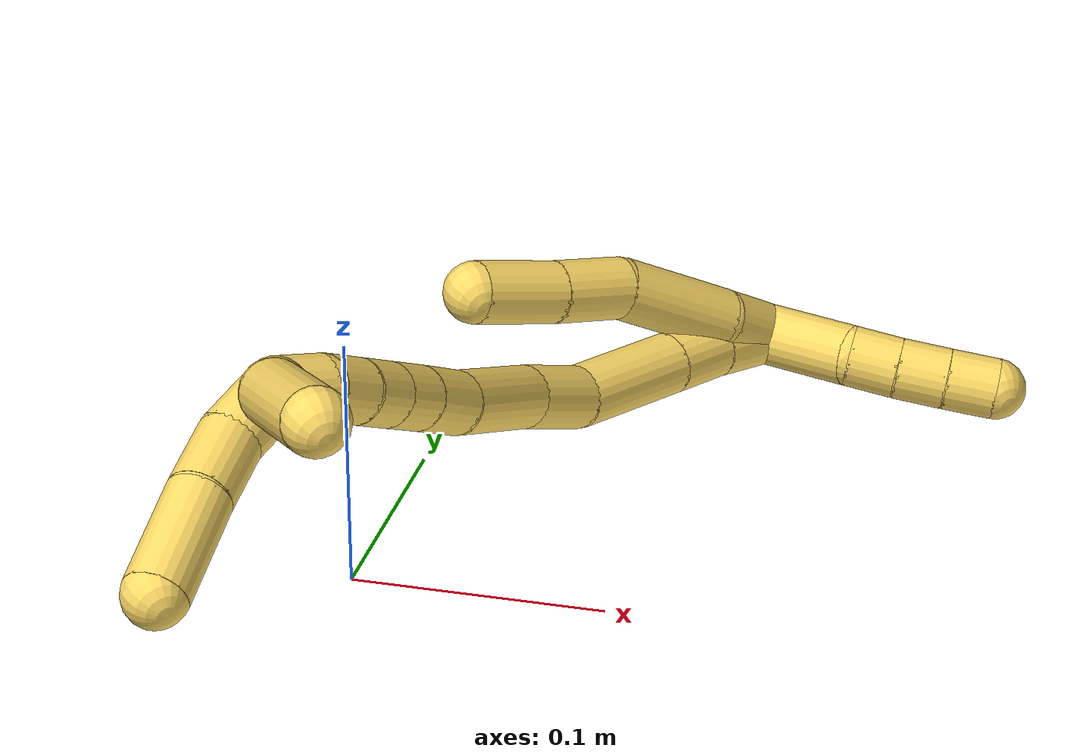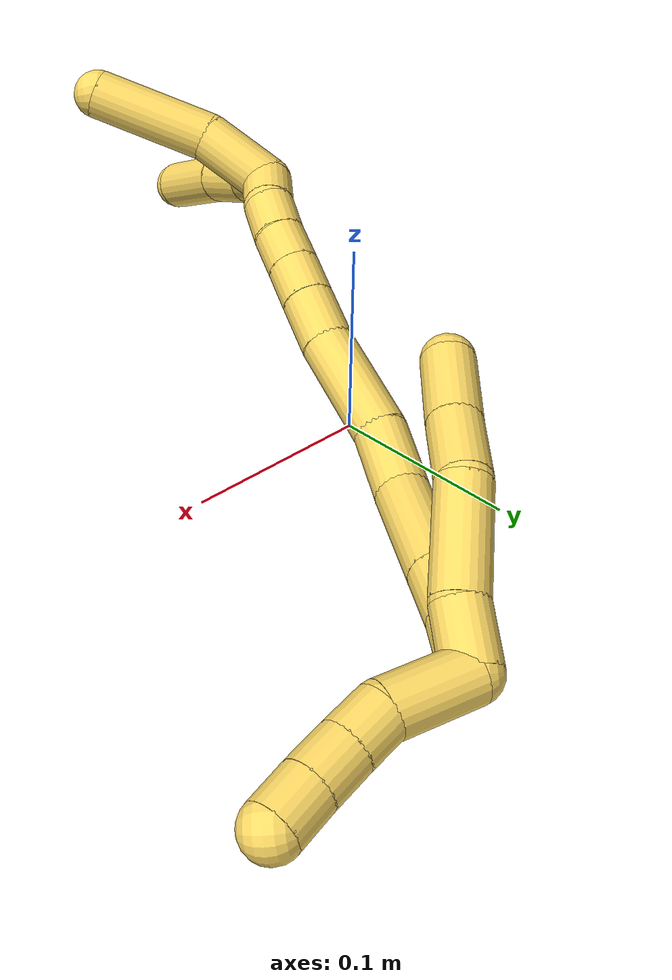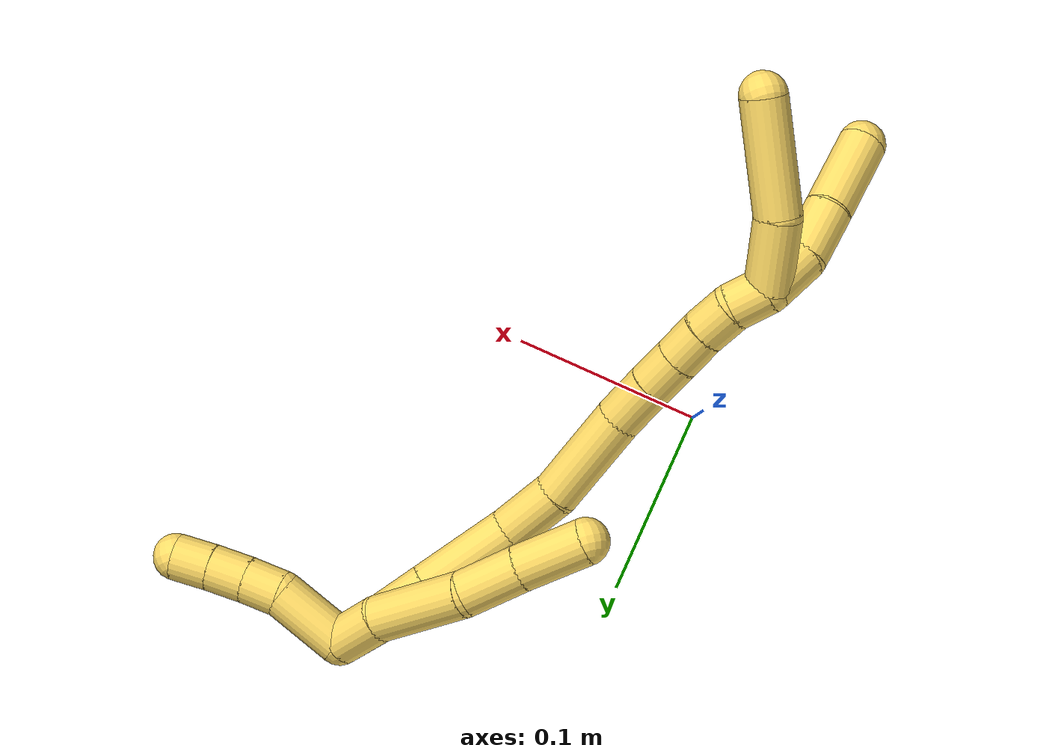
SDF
<sdf version="1.7">
 <world name="default">
  <model name="photoneo_s_sensor">
   <static>1</static>
   <pose>0 0 2 1.57079 1.57079 3.14159</pose>
   <link name="link">
    <inertial><mass>0.1</mass></inertial>
    <sensor name="sensor" type="depth">
     <update_rate>30</update_rate>
     <camera>
      <horizontal_fov>1.22</horizontal_fov>
      <image><width>1920</width><height>1200</height><format>B8G8R8</format></image>
      <clip><near>0.1</near><far>4</far></clip>
      <depth_camera><output>points</output></depth_camera>
     </camera>
     <plugin name="camera_plugin" filename="libgazebo_ros_depth_camera.so">
      <baseline>0.2</baseline>
      <alwaysOn>1</alwaysOn>
      <updateRate>0.0</updateRate>
      <cameraName>camera_ir</cameraName>
      <imageTopicName>/camera/color/image_raw</imageTopicName>
      <cameraInfoTopicName>/camera/color/camera_info</cameraInfoTopicName>
      <depthImageTopicName>/camera/depth/image_raw</depthImageTopicName>
      <depthImageCameraInfoTopicName>/camera/depth/camera_info</depthImageCameraInfoTopicName>
      <pointCloudTopicName>/camera/depth/points</pointCloudTopicName>
      <frameName>fr_optical</frameName>
      <pointCloudCutoff>0.1</pointCloudCutoff>
      <pointCloudCutoffMax>2.0</pointCloudCutoffMax>
      <distortionK1>0</distortionK1>
      <distortionK2>0</distortionK2>
      <distortionK3>0</distortionK3>
      <distortionT1>0</distortionT1>
      <distortionT2>0</distortionT2>
      <CxPrime>0</CxPrime>
      <Cx>0</Cx>
      <Cy>0</Cy>
      <focalLength>0</focalLength>
      <hackBaseline>0</hackBaseline>
     </plugin>
    </sensor>
   </link>
  </model>
  <model name="bin">
   <static>1</static>
   <link name="bottom">
    <collision name="collision-bottom">
     <pose>0 0 -0.01 0 -0 0</pose>
     <geometry><box><size>0.8 0.6 0.02</size></box></geometry>
     <surface>
      <friction><ode><mu>100</mu><mu2>100</mu2></ode></friction>
      <contact><collide_bitmask>65535</collide_bitmask></contact>
     </surface>
    </collision>
   </link>
   <link name="west_wall">
    <collision name="collision-west_wall">
     <pose>-0.41 0 0.1 0 -0 0</pose>
     <geometry><box><size>0.02 0.6 0.2</size></box></geometry>
     <surface>
      <friction><ode><mu>100</mu><mu2>100</mu2></ode></friction>
      <contact><collide_bitmask>65535</collide_bitmask></contact>
     </surface>
    </collision>
   </link>
   <link name="east_wall">
    <collision name="collision-east_wall">
     <pose>0.41 0 0.1 0 -0 0</pose>
     <geometry><box><size>0.02 0.6 0.2</size></box></geometry>
     <surface>
      <friction><ode><mu>100</mu><mu2>100</mu2></ode></friction>
      <contact><collide_bitmask>65535</collide_bitmask></contact>
     </surface>
    </collision>
   </link>
   <link name="south_wall">
    <collision name="collision-south_wall">
     <pose>0 -0.31 0.1 0 -0 0</pose>
     <geometry><box><size>0.8 0.02 0.2</size></box></geometry>
     <surface>
      <friction><ode><mu>100</mu><mu2>100</mu2></ode></friction>
      <contact><collide_bitmask>65535</collide_bitmask></contact>
     </surface>
    </collision>
   </link>
   <link name="north_wall">
    <collision name="collision-north_wall">
     <pose>0 0.31 0.1 0 -0 0</pose>
     <geometry><box><size>0.8 0.02 0.2</size></box></geometry>
     <surface>
      <friction><ode><mu>100</mu><mu2>100</mu2></ode></friction>
      <contact><collide_bitmask>65535</collide_bitmask></contact>
     </surface>
    </collision>
   </link>
  </model>
  <model name="5">
   <static>0</static>
   <link name="5">
    <collision name="collision-cylinder-e_1_2_8">
     <pose>-0.00446 -0.013111 -0.001618 1.69357 -0.325618 -0.367368</pose>
     <geometry><cylinder><radius>0.0125</radius><length>0.027886</length></cylinder></geometry>
     <surface>
      <friction><ode><mu>1.16</mu><mu2>1.16</mu2><slip1>0</slip1><slip2>0</slip2></ode></friction>
      <contact><ode><kp>1e+06</kp><kd>1</kd><max_vel>0</max_vel><min_depth>0.001</min_depth></ode></contact>
     </surface>
    </collision>
    <visual name="visual-cylinder-e_1_2_8">
     <pose>-0.00446 -0.013111 -0.001618 1.69357 -0.325618 -0.367368</pose>
     <geometry><cylinder><radius>0.0125</radius><length>0.027886</length></cylinder></geometry>
     <material><ambient>1 0.858824 0.4 1</ambient></material>
    </visual>
    <collision name="collision-cylinder-e_2_8_9">
     <pose>-0.01985 -0.049872 -0.001154 1.48301 -0.431441 -0.39612</pose>
     <geometry><cylinder><radius>0.0125</radius><length>0.052274</length></cylinder></geometry>
     <surface>
      <friction><ode><mu>1.16</mu><mu2>1.16</mu2><slip1>0</slip1><slip2>0</slip2></ode></friction>
      <contact><ode><kp>1e+06</kp><kd>1</kd><max_vel>0</max_vel><min_depth>0.001</min_depth></ode></contact>
     </surface>
    </collision>
    <visual name="visual-cylinder-e_2_8_9">
     <pose>-0.01985 -0.049872 -0.001154 1.48301 -0.431441 -0.39612</pose>
     <geometry><cylinder><radius>0.0125</radius><length>0.052274</length></cylinder></geometry>
     <material><ambient>1 0.858824 0.4 1</ambient></material>
    </visual>
    <collision name="collision-cylinder-e_3_9_10">
     <pose>-0.040745 -0.086258 -0.000809 1.70633 -0.659447 -0.747271</pose>
     <geometry><cylinder><radius>0.0125</radius><length>0.032526</length></cylinder></geometry>
     <surface>
      <friction><ode><mu>1.16</mu><mu2>1.16</mu2><slip1>0</slip1><slip2>0</slip2></ode></friction>
      <contact><ode><kp>1e+06</kp><kd>1</kd><max_vel>0</max_vel><min_depth>0.001</min_depth></ode></contact>
     </surface>
    </collision>
    <visual name="visual-cylinder-e_3_9_10">
     <pose>-0.040745 -0.086258 -0.000809 1.70633 -0.659447 -0.747271</pose>
     <geometry><cylinder><radius>0.0125</radius><length>0.032526</length></cylinder></geometry>
     <material><ambient>1 0.858824 0.4 1</ambient></material>
    </visual>
    <collision name="collision-cylinder-e_4_10_6">
     <pose>-0.061729 -0.114001 -0.003735 1.64988 -0.631924 -0.680195</pose>
     <geometry><cylinder><radius>0.0125</radius><length>0.037314</length></cylinder></geometry>
     <surface>
      <friction><ode><mu>1.16</mu><mu2>1.16</mu2><slip1>0</slip1><slip2>0</slip2></ode></friction>
      <contact><ode><kp>1e+06</kp><kd>1</kd><max_vel>0</max_vel><min_depth>0.001</min_depth></ode></contact>
     </surface>
    </collision>
    <visual name="visual-cylinder-e_4_10_6">
     <pose>-0.061729 -0.114001 -0.003735 1.64988 -0.631924 -0.680195</pose>
     <geometry><cylinder><radius>0.0125</radius><length>0.037314</length></cylinder></geometry>
     <material><ambient>1 0.858824 0.4 1</ambient></material>
    </visual>
    <collision name="collision-cylinder-e_1_2_11">
     <pose>0.010831 0.004786 -0.015726 -2.84616 0.582596 -2.22026</pose>
     <geometry><cylinder><radius>0.0125</radius><length>0.039371</length></cylinder></geometry>
     <surface>
      <friction><ode><mu>1.16</mu><mu2>1.16</mu2><slip1>0</slip1><slip2>0</slip2></ode></friction>
      <contact><ode><kp>1e+06</kp><kd>1</kd><max_vel>0</max_vel><min_depth>0.001</min_depth></ode></contact>
     </surface>
    </collision>
    <visual name="visual-cylinder-e_1_2_11">
     <pose>0.010831 0.004786 -0.015726 -2.84616 0.582596 -2.22026</pose>
     <geometry><cylinder><radius>0.0125</radius><length>0.039371</length></cylinder></geometry>
     <material><ambient>1 0.858824 0.4 1</ambient></material>
    </visual>
    <collision name="collision-cylinder-e_2_11_12">
     <pose>0.027495 0.014893 -0.037615 -2.42931 0.621652 -1.4246</pose>
     <geometry><cylinder><radius>0.0125</radius><length>0.020032</length></cylinder></geometry>
     <surface>
      <friction><ode><mu>1.16</mu><mu2>1.16</mu2><slip1>0</slip1><slip2>0</slip2></ode></friction>
      <contact><ode><kp>1e+06</kp><kd>1</kd><max_vel>0</max_vel><min_depth>0.001</min_depth></ode></contact>
     </surface>
    </collision>
    <visual name="visual-cylinder-e_2_11_12">
     <pose>0.027495 0.014893 -0.037615 -2.42931 0.621652 -1.4246</pose>
     <geometry><cylinder><radius>0.0125</radius><length>0.020032</length></cylinder></geometry>
     <material><ambient>1 0.858824 0.4 1</ambient></material>
    </visual>
    <collision name="collision-cylinder-e_3_12_13">
     <pose>0.039561 0.025659 -0.049624 -2.39178 0.662524 -1.43653</pose>
     <geometry><cylinder><radius>0.0125</radius><length>0.020265</length></cylinder></geometry>
     <surface>
      <friction><ode><mu>1.16</mu><mu2>1.16</mu2><slip1>0</slip1><slip2>0</slip2></ode></friction>
      <contact><ode><kp>1e+06</kp><kd>1</kd><max_vel>0</max_vel><min_depth>0.001</min_depth></ode></contact>
     </surface>
    </collision>
    <visual name="visual-cylinder-e_3_12_13">
     <pose>0.039561 0.025659 -0.049624 -2.39178 0.662524 -1.43653</pose>
     <geometry><cylinder><radius>0.0125</radius><length>0.020265</length></cylinder></geometry>
     <material><ambient>1 0.858824 0.4 1</ambient></material>
    </visual>
    <collision name="collision-cylinder-e_4_13_5">
     <pose>0.05215 0.036776 -0.061017 -2.34502 0.675488 -1.39103</pose>
     <geometry><cylinder><radius>0.0125</radius><length>0.020331</length></cylinder></geometry>
     <surface>
      <friction><ode><mu>1.16</mu><mu2>1.16</mu2><slip1>0</slip1><slip2>0</slip2></ode></friction>
      <contact><ode><kp>1e+06</kp><kd>1</kd><max_vel>0</max_vel><min_depth>0.001</min_depth></ode></contact>
     </surface>
    </collision>
    <visual name="visual-cylinder-e_4_13_5">
     <pose>0.05215 0.036776 -0.061017 -2.34502 0.675488 -1.39103</pose>
     <geometry><cylinder><radius>0.0125</radius><length>0.020331</length></cylinder></geometry>
     <material><ambient>1 0.858824 0.4 1</ambient></material>
    </visual>
    <collision name="collision-cylinder-e_1_2_14">
     <pose>-0.009314 -0.009873 -0.003114 1.87636 -0.732667 -0.964239</pose>
     <geometry><cylinder><radius>0.0125</radius><length>0.027852</length></cylinder></geometry>
     <surface>
      <friction><ode><mu>1.16</mu><mu2>1.16</mu2><slip1>0</slip1><slip2>0</slip2></ode></friction>
      <contact><ode><kp>1e+06</kp><kd>1</kd><max_vel>0</max_vel><min_depth>0.001</min_depth></ode></contact>
     </surface>
    </collision>
    <visual name="visual-cylinder-e_1_2_14">
     <pose>-0.009314 -0.009873 -0.003114 1.87636 -0.732667 -0.964239</pose>
     <geometry><cylinder><radius>0.0125</radius><length>0.027852</length></cylinder></geometry>
     <material><ambient>1 0.858824 0.4 1</ambient></material>
    </visual>
    <collision name="collision-cylinder-e_2_14_15">
     <pose>-0.027362 -0.028791 -0.010291 1.9929 -0.7221 -1.05642</pose>
     <geometry><cylinder><radius>0.0125</radius><length>0.026427</length></cylinder></geometry>
     <surface>
      <friction><ode><mu>1.16</mu><mu2>1.16</mu2><slip1>0</slip1><slip2>0</slip2></ode></friction>
      <contact><ode><kp>1e+06</kp><kd>1</kd><max_vel>0</max_vel><min_depth>0.001</min_depth></ode></contact>
     </surface>
    </collision>
    <visual name="visual-cylinder-e_2_14_15">
     <pose>-0.027362 -0.028791 -0.010291 1.9929 -0.7221 -1.05642</pose>
     <geometry><cylinder><radius>0.0125</radius><length>0.026427</length></cylinder></geometry>
     <material><ambient>1 0.858824 0.4 1</ambient></material>
    </visual>
    <collision name="collision-cylinder-e_3_15_16">
     <pose>-0.053096 -0.055514 -0.022258 1.99128 -0.720463 -1.05272</pose>
     <geometry><cylinder><radius>0.0125</radius><length>0.051536</length></cylinder></geometry>
     <surface>
      <friction><ode><mu>1.16</mu><mu2>1.16</mu2><slip1>0</slip1><slip2>0</slip2></ode></friction>
      <contact><ode><kp>1e+06</kp><kd>1</kd><max_vel>0</max_vel><min_depth>0.001</min_depth></ode></contact>
     </surface>
    </collision>
    <visual name="visual-cylinder-e_3_15_16">
     <pose>-0.053096 -0.055514 -0.022258 1.99128 -0.720463 -1.05272</pose>
     <geometry><cylinder><radius>0.0125</radius><length>0.051536</length></cylinder></geometry>
     <material><ambient>1 0.858824 0.4 1</ambient></material>
    </visual>
    <collision name="collision-cylinder-e_4_16_17">
     <pose>-0.076996 -0.087808 -0.034815 1.87897 -0.422746 -0.570947</pose>
     <geometry><cylinder><radius>0.0125</radius><length>0.03364</length></cylinder></geometry>
     <surface>
      <friction><ode><mu>1.16</mu><mu2>1.16</mu2><slip1>0</slip1><slip2>0</slip2></ode></friction>
      <contact><ode><kp>1e+06</kp><kd>1</kd><max_vel>0</max_vel><min_depth>0.001</min_depth></ode></contact>
     </surface>
    </collision>
    <visual name="visual-cylinder-e_4_16_17">
     <pose>-0.076996 -0.087808 -0.034815 1.87897 -0.422746 -0.570947</pose>
     <geometry><cylinder><radius>0.0125</radius><length>0.03364</length></cylinder></geometry>
     <material><ambient>1 0.858824 0.4 1</ambient></material>
    </visual>
    <collision name="collision-cylinder-e_5_17_18">
     <pose>-0.09217 -0.124972 -0.05125 2.05233 -0.314408 -0.511887</pose>
     <geometry><cylinder><radius>0.0125</radius><length>0.053503</length></cylinder></geometry>
     <surface>
      <friction><ode><mu>1.16</mu><mu2>1.16</mu2><slip1>0</slip1><slip2>0</slip2></ode></friction>
      <contact><ode><kp>1e+06</kp><kd>1</kd><max_vel>0</max_vel><min_depth>0.001</min_depth></ode></contact>
     </surface>
    </collision>
    <visual name="visual-cylinder-e_5_17_18">
     <pose>-0.09217 -0.124972 -0.05125 2.05233 -0.314408 -0.511887</pose>
     <geometry><cylinder><radius>0.0125</radius><length>0.053503</length></cylinder></geometry>
     <material><ambient>1 0.858824 0.4 1</ambient></material>
    </visual>
    <collision name="collision-cylinder-e_6_18_19">
     <pose>-0.103931 -0.159322 -0.067542 1.93573 -0.269324 -0.388619</pose>
     <geometry><cylinder><radius>0.0125</radius><length>0.026214</length></cylinder></geometry>
     <surface>
      <friction><ode><mu>1.16</mu><mu2>1.16</mu2><slip1>0</slip1><slip2>0</slip2></ode></friction>
      <contact><ode><kp>1e+06</kp><kd>1</kd><max_vel>0</max_vel><min_depth>0.001</min_depth></ode></contact>
     </surface>
    </collision>
    <visual name="visual-cylinder-e_6_18_19">
     <pose>-0.103931 -0.159322 -0.067542 1.93573 -0.269324 -0.388619</pose>
     <geometry><cylinder><radius>0.0125</radius><length>0.026214</length></cylinder></geometry>
     <material><ambient>1 0.858824 0.4 1</ambient></material>
    </visual>
    <collision name="collision-cylinder-e_7_19_20">
     <pose>-0.110364 -0.180365 -0.075517 1.92961 -0.290044 -0.415431</pose>
     <geometry><cylinder><radius>0.0125</radius><length>0.020599</length></cylinder></geometry>
     <surface>
      <friction><ode><mu>1.16</mu><mu2>1.16</mu2><slip1>0</slip1><slip2>0</slip2></ode></friction>
      <contact><ode><kp>1e+06</kp><kd>1</kd><max_vel>0</max_vel><min_depth>0.001</min_depth></ode></contact>
     </surface>
    </collision>
    <visual name="visual-cylinder-e_7_19_20">
     <pose>-0.110364 -0.180365 -0.075517 1.92961 -0.290044 -0.415431</pose>
     <geometry><cylinder><radius>0.0125</radius><length>0.020599</length></cylinder></geometry>
     <material><ambient>1 0.858824 0.4 1</ambient></material>
    </visual>
    <collision name="collision-cylinder-e_8_20_21">
     <pose>-0.116102 -0.198624 -0.082458 1.9387 -0.281326 -0.406953</pose>
     <geometry><cylinder><radius>0.0125</radius><length>0.020122</length></cylinder></geometry>
     <surface>
      <friction><ode><mu>1.16</mu><mu2>1.16</mu2><slip1>0</slip1><slip2>0</slip2></ode></friction>
      <contact><ode><kp>1e+06</kp><kd>1</kd><max_vel>0</max_vel><min_depth>0.001</min_depth></ode></contact>
     </surface>
    </collision>
    <visual name="visual-cylinder-e_8_20_21">
     <pose>-0.116102 -0.198624 -0.082458 1.9387 -0.281326 -0.406953</pose>
     <geometry><cylinder><radius>0.0125</radius><length>0.020122</length></cylinder></geometry>
     <material><ambient>1 0.858824 0.4 1</ambient></material>
    </visual>
    <collision name="collision-cylinder-e_9_21_22">
     <pose>-0.122233 -0.216687 -0.088682 1.86573 -0.339457 -0.454365</pose>
     <geometry><cylinder><radius>0.0125</radius><length>0.020047</length></cylinder></geometry>
     <surface>
      <friction><ode><mu>1.16</mu><mu2>1.16</mu2><slip1>0</slip1><slip2>0</slip2></ode></friction>
      <contact><ode><kp>1e+06</kp><kd>1</kd><max_vel>0</max_vel><min_depth>0.001</min_depth></ode></contact>
     </surface>
    </collision>
    <visual name="visual-cylinder-e_9_21_22">
     <pose>-0.122233 -0.216687 -0.088682 1.86573 -0.339457 -0.454365</pose>
     <geometry><cylinder><radius>0.0125</radius><length>0.020047</length></cylinder></geometry>
     <material><ambient>1 0.858824 0.4 1</ambient></material>
    </visual>
    <collision name="collision-cylinder-e_10_22_1">
     <pose>-0.131455 -0.233748 -0.092735 1.73222 -0.626852 -0.728315</pose>
     <geometry><cylinder><radius>0.0125</radius><length>0.020061</length></cylinder></geometry>
     <surface>
      <friction><ode><mu>1.16</mu><mu2>1.16</mu2><slip1>0</slip1><slip2>0</slip2></ode></friction>
      <contact><ode><kp>1e+06</kp><kd>1</kd><max_vel>0</max_vel><min_depth>0.001</min_depth></ode></contact>
     </surface>
    </collision>
    <visual name="visual-cylinder-e_10_22_1">
     <pose>-0.131455 -0.233748 -0.092735 1.73222 -0.626852 -0.728315</pose>
     <geometry><cylinder><radius>0.0125</radius><length>0.020061</length></cylinder></geometry>
     <material><ambient>1 0.858824 0.4 1</ambient></material>
    </visual>
    <collision name="collision-cylinder-e_1_1_23">
     <pose>-0.148037 -0.246066 -0.100585 2.56026 -0.938981 -2.07607</pose>
     <geometry><cylinder><radius>0.0125</radius><length>0.026516</length></cylinder></geometry>
     <surface>
      <friction><ode><mu>1.16</mu><mu2>1.16</mu2><slip1>0</slip1><slip2>0</slip2></ode></friction>
      <contact><ode><kp>1e+06</kp><kd>1</kd><max_vel>0</max_vel><min_depth>0.001</min_depth></ode></contact>
     </surface>
    </collision>
    <visual name="visual-cylinder-e_1_1_23">
     <pose>-0.148037 -0.246066 -0.100585 2.56026 -0.938981 -2.07607</pose>
     <geometry><cylinder><radius>0.0125</radius><length>0.026516</length></cylinder></geometry>
     <material><ambient>1 0.858824 0.4 1</ambient></material>
    </visual>
    <collision name="collision-cylinder-e_2_23_24">
     <pose>-0.167729 -0.254784 -0.117958 2.75421 -0.655475 -2.09505</pose>
     <geometry><cylinder><radius>0.0125</radius><length>0.029507</length></cylinder></geometry>
     <surface>
      <friction><ode><mu>1.16</mu><mu2>1.16</mu2><slip1>0</slip1><slip2>0</slip2></ode></friction>
      <contact><ode><kp>1e+06</kp><kd>1</kd><max_vel>0</max_vel><min_depth>0.001</min_depth></ode></contact>
     </surface>
    </collision>
    <visual name="visual-cylinder-e_2_23_24">
     <pose>-0.167729 -0.254784 -0.117958 2.75421 -0.655475 -2.09505</pose>
     <geometry><cylinder><radius>0.0125</radius><length>0.029507</length></cylinder></geometry>
     <material><ambient>1 0.858824 0.4 1</ambient></material>
    </visual>
    <collision name="collision-cylinder-e_3_24_4">
     <pose>-0.191073 -0.263523 -0.144876 2.87921 -0.711126 -2.45876</pose>
     <geometry><cylinder><radius>0.0125</radius><length>0.043977</length></cylinder></geometry>
     <surface>
      <friction><ode><mu>1.16</mu><mu2>1.16</mu2><slip1>0</slip1><slip2>0</slip2></ode></friction>
      <contact><ode><kp>1e+06</kp><kd>1</kd><max_vel>0</max_vel><min_depth>0.001</min_depth></ode></contact>
     </surface>
    </collision>
    <visual name="visual-cylinder-e_3_24_4">
     <pose>-0.191073 -0.263523 -0.144876 2.87921 -0.711126 -2.45876</pose>
     <geometry><cylinder><radius>0.0125</radius><length>0.043977</length></cylinder></geometry>
     <material><ambient>1 0.858824 0.4 1</ambient></material>
    </visual>
    <collision name="collision-cylinder-e_1_1_25">
     <pose>-0.135208 -0.254908 -0.108054 2.38827 0.110424 0.277653</pose>
     <geometry><cylinder><radius>0.0125</radius><length>0.03866</length></cylinder></geometry>
     <surface>
      <friction><ode><mu>1.16</mu><mu2>1.16</mu2><slip1>0</slip1><slip2>0</slip2></ode></friction>
      <contact><ode><kp>1e+06</kp><kd>1</kd><max_vel>0</max_vel><min_depth>0.001</min_depth></ode></contact>
     </surface>
    </collision>
    <visual name="visual-cylinder-e_1_1_25">
     <pose>-0.135208 -0.254908 -0.108054 2.38827 0.110424 0.277653</pose>
     <geometry><cylinder><radius>0.0125</radius><length>0.03866</length></cylinder></geometry>
     <material><ambient>1 0.858824 0.4 1</ambient></material>
    </visual>
    <collision name="collision-cylinder-e_2_25_3">
     <pose>-0.126742 -0.281978 -0.148649 2.65896 0.208095 0.802551</pose>
     <geometry><cylinder><radius>0.0125</radius><length>0.06134</length></cylinder></geometry>
     <surface>
      <friction><ode><mu>1.16</mu><mu2>1.16</mu2><slip1>0</slip1><slip2>0</slip2></ode></friction>
      <contact><ode><kp>1e+06</kp><kd>1</kd><max_vel>0</max_vel><min_depth>0.001</min_depth></ode></contact>
     </surface>
    </collision>
    <visual name="visual-cylinder-e_2_25_3">
     <pose>-0.126742 -0.281978 -0.148649 2.65896 0.208095 0.802551</pose>
     <geometry><cylinder><radius>0.0125</radius><length>0.06134</length></cylinder></geometry>
     <material><ambient>1 0.858824 0.4 1</ambient></material>
    </visual>
    <collision name="collision-sphere-3">
     <pose>-0.120406 -0.295905 -0.17523 0 -0 0</pose>
     <geometry><sphere><radius>0.0125</radius></sphere></geometry>
     <surface>
      <friction><ode><mu>1.16</mu><mu2>1.16</mu2><slip1>0</slip1><slip2>0</slip2></ode></friction>
      <contact><ode><kp>1e+06</kp><kd>1</kd><max_vel>0</max_vel><min_depth>0.001</min_depth></ode></contact>
     </surface>
    </collision>
    <visual name="visual-sphere-3">
     <pose>-0.120406 -0.295905 -0.17523 0 -0 0</pose>
     <geometry><sphere><radius>0.0125</radius></sphere></geometry>
     <material><ambient>1 0.858824 0.4 1</ambient></material>
    </visual>
    <collision name="collision-sphere-25">
     <pose>-0.133078 -0.268051 -0.122068 0 -0 0</pose>
     <geometry><sphere><radius>0.0125</radius></sphere></geometry>
     <surface>
      <friction><ode><mu>1.16</mu><mu2>1.16</mu2><slip1>0</slip1><slip2>0</slip2></ode></friction>
      <contact><ode><kp>1e+06</kp><kd>1</kd><max_vel>0</max_vel><min_depth>0.001</min_depth></ode></contact>
     </surface>
    </collision>
    <visual name="visual-sphere-25">
     <pose>-0.133078 -0.268051 -0.122068 0 -0 0</pose>
     <geometry><sphere><radius>0.0125</radius></sphere></geometry>
     <material><ambient>1 0.858824 0.4 1</ambient></material>
    </visual>
    <collision name="collision-sphere-4">
     <pose>-0.205425 -0.267844 -0.160965 0 -0 0</pose>
     <geometry><sphere><radius>0.0125</radius></sphere></geometry>
     <surface>
      <friction><ode><mu>1.16</mu><mu2>1.16</mu2><slip1>0</slip1><slip2>0</slip2></ode></friction>
      <contact><ode><kp>1e+06</kp><kd>1</kd><max_vel>0</max_vel><min_depth>0.001</min_depth></ode></contact>
     </surface>
    </collision>
    <visual name="visual-sphere-4">
     <pose>-0.205425 -0.267844 -0.160965 0 -0 0</pose>
     <geometry><sphere><radius>0.0125</radius></sphere></geometry>
     <material><ambient>1 0.858824 0.4 1</ambient></material>
    </visual>
    <collision name="collision-sphere-24">
     <pose>-0.176721 -0.259202 -0.128787 0 -0 0</pose>
     <geometry><sphere><radius>0.0125</radius></sphere></geometry>
     <surface>
      <friction><ode><mu>1.16</mu><mu2>1.16</mu2><slip1>0</slip1><slip2>0</slip2></ode></friction>
      <contact><ode><kp>1e+06</kp><kd>1</kd><max_vel>0</max_vel><min_depth>0.001</min_depth></ode></contact>
     </surface>
    </collision>
    <visual name="visual-sphere-24">
     <pose>-0.176721 -0.259202 -0.128787 0 -0 0</pose>
     <geometry><sphere><radius>0.0125</radius></sphere></geometry>
     <material><ambient>1 0.858824 0.4 1</ambient></material>
    </visual>
    <collision name="collision-sphere-23">
     <pose>-0.158736 -0.250366 -0.107129 0 -0 0</pose>
     <geometry><sphere><radius>0.0125</radius></sphere></geometry>
     <surface>
      <friction><ode><mu>1.16</mu><mu2>1.16</mu2><slip1>0</slip1><slip2>0</slip2></ode></friction>
      <contact><ode><kp>1e+06</kp><kd>1</kd><max_vel>0</max_vel><min_depth>0.001</min_depth></ode></contact>
     </surface>
    </collision>
    <visual name="visual-sphere-23">
     <pose>-0.158736 -0.250366 -0.107129 0 -0 0</pose>
     <geometry><sphere><radius>0.0125</radius></sphere></geometry>
     <material><ambient>1 0.858824 0.4 1</ambient></material>
    </visual>
    <collision name="collision-sphere-1">
     <pose>-0.137338 -0.241766 -0.094041 0 -0 0</pose>
     <geometry><sphere><radius>0.0125</radius></sphere></geometry>
     <surface>
      <friction><ode><mu>1.16</mu><mu2>1.16</mu2><slip1>0</slip1><slip2>0</slip2></ode></friction>
      <contact><ode><kp>1e+06</kp><kd>1</kd><max_vel>0</max_vel><min_depth>0.001</min_depth></ode></contact>
     </surface>
    </collision>
    <visual name="visual-sphere-1">
     <pose>-0.137338 -0.241766 -0.094041 0 -0 0</pose>
     <geometry><sphere><radius>0.0125</radius></sphere></geometry>
     <material><ambient>1 0.858824 0.4 1</ambient></material>
    </visual>
    <collision name="collision-sphere-22">
     <pose>-0.125571 -0.22573 -0.091429 0 -0 0</pose>
     <geometry><sphere><radius>0.0125</radius></sphere></geometry>
     <surface>
      <friction><ode><mu>1.16</mu><mu2>1.16</mu2><slip1>0</slip1><slip2>0</slip2></ode></friction>
      <contact><ode><kp>1e+06</kp><kd>1</kd><max_vel>0</max_vel><min_depth>0.001</min_depth></ode></contact>
     </surface>
    </collision>
    <visual name="visual-sphere-22">
     <pose>-0.125571 -0.22573 -0.091429 0 -0 0</pose>
     <geometry><sphere><radius>0.0125</radius></sphere></geometry>
     <material><ambient>1 0.858824 0.4 1</ambient></material>
    </visual>
    <collision name="collision-sphere-21">
     <pose>-0.118896 -0.207643 -0.085935 0 -0 0</pose>
     <geometry><sphere><radius>0.0125</radius></sphere></geometry>
     <surface>
      <friction><ode><mu>1.16</mu><mu2>1.16</mu2><slip1>0</slip1><slip2>0</slip2></ode></friction>
      <contact><ode><kp>1e+06</kp><kd>1</kd><max_vel>0</max_vel><min_depth>0.001</min_depth></ode></contact>
     </surface>
    </collision>
    <visual name="visual-sphere-21">
     <pose>-0.118896 -0.207643 -0.085935 0 -0 0</pose>
     <geometry><sphere><radius>0.0125</radius></sphere></geometry>
     <material><ambient>1 0.858824 0.4 1</ambient></material>
    </visual>
    <collision name="collision-sphere-11">
     <pose>0.021662 0.009572 -0.031452 0 -0 0</pose>
     <geometry><sphere><radius>0.0125</radius></sphere></geometry>
     <surface>
      <friction><ode><mu>1.16</mu><mu2>1.16</mu2><slip1>0</slip1><slip2>0</slip2></ode></friction>
      <contact><ode><kp>1e+06</kp><kd>1</kd><max_vel>0</max_vel><min_depth>0.001</min_depth></ode></contact>
     </surface>
    </collision>
    <visual name="visual-sphere-11">
     <pose>0.021662 0.009572 -0.031452 0 -0 0</pose>
     <geometry><sphere><radius>0.0125</radius></sphere></geometry>
     <material><ambient>1 0.858824 0.4 1</ambient></material>
    </visual>
    <collision name="collision-sphere-6">
     <pose>-0.07275 -0.129008 -0.004925 0 -0 0</pose>
     <geometry><sphere><radius>0.0125</radius></sphere></geometry>
     <surface>
      <friction><ode><mu>1.16</mu><mu2>1.16</mu2><slip1>0</slip1><slip2>0</slip2></ode></friction>
      <contact><ode><kp>1e+06</kp><kd>1</kd><max_vel>0</max_vel><min_depth>0.001</min_depth></ode></contact>
     </surface>
    </collision>
    <visual name="visual-sphere-6">
     <pose>-0.07275 -0.129008 -0.004925 0 -0 0</pose>
     <geometry><sphere><radius>0.0125</radius></sphere></geometry>
     <material><ambient>1 0.858824 0.4 1</ambient></material>
    </visual>
    <collision name="collision-sphere-10">
     <pose>-0.050709 -0.098993 -0.002546 0 -0 0</pose>
     <geometry><sphere><radius>0.0125</radius></sphere></geometry>
     <surface>
      <friction><ode><mu>1.16</mu><mu2>1.16</mu2><slip1>0</slip1><slip2>0</slip2></ode></friction>
      <contact><ode><kp>1e+06</kp><kd>1</kd><max_vel>0</max_vel><min_depth>0.001</min_depth></ode></contact>
     </surface>
    </collision>
    <visual name="visual-sphere-10">
     <pose>-0.050709 -0.098993 -0.002546 0 -0 0</pose>
     <geometry><sphere><radius>0.0125</radius></sphere></geometry>
     <material><ambient>1 0.858824 0.4 1</ambient></material>
    </visual>
    <collision name="collision-sphere-9">
     <pose>-0.03078 -0.073523 0.000927 0 -0 0</pose>
     <geometry><sphere><radius>0.0125</radius></sphere></geometry>
     <surface>
      <friction><ode><mu>1.16</mu><mu2>1.16</mu2><slip1>0</slip1><slip2>0</slip2></ode></friction>
      <contact><ode><kp>1e+06</kp><kd>1</kd><max_vel>0</max_vel><min_depth>0.001</min_depth></ode></contact>
     </surface>
    </collision>
    <visual name="visual-sphere-9">
     <pose>-0.03078 -0.073523 0.000927 0 -0 0</pose>
     <geometry><sphere><radius>0.0125</radius></sphere></geometry>
     <material><ambient>1 0.858824 0.4 1</ambient></material>
    </visual>
    <collision name="collision-sphere-2">
     <geometry><sphere><radius>0.0125</radius></sphere></geometry>
     <surface>
      <friction><ode><mu>1.16</mu><mu2>1.16</mu2><slip1>0</slip1><slip2>0</slip2></ode></friction>
      <contact><ode><kp>1e+06</kp><kd>1</kd><max_vel>0</max_vel><min_depth>0.001</min_depth></ode></contact>
     </surface>
    </collision>
    <visual name="visual-sphere-2">
     <geometry><sphere><radius>0.0125</radius></sphere></geometry>
     <material><ambient>1 0.858824 0.4 1</ambient></material>
    </visual>
    <collision name="collision-sphere-19">
     <pose>-0.107418 -0.171125 -0.072051 0 -0 0</pose>
     <geometry><sphere><radius>0.0125</radius></sphere></geometry>
     <surface>
      <friction><ode><mu>1.16</mu><mu2>1.16</mu2><slip1>0</slip1><slip2>0</slip2></ode></friction>
      <contact><ode><kp>1e+06</kp><kd>1</kd><max_vel>0</max_vel><min_depth>0.001</min_depth></ode></contact>
     </surface>
    </collision>
    <visual name="visual-sphere-19">
     <pose>-0.107418 -0.171125 -0.072051 0 -0 0</pose>
     <geometry><sphere><radius>0.0125</radius></sphere></geometry>
     <material><ambient>1 0.858824 0.4 1</ambient></material>
    </visual>
    <collision name="collision-sphere-8">
     <pose>-0.00892 -0.026221 -0.003236 0 -0 0</pose>
     <geometry><sphere><radius>0.0125</radius></sphere></geometry>
     <surface>
      <friction><ode><mu>1.16</mu><mu2>1.16</mu2><slip1>0</slip1><slip2>0</slip2></ode></friction>
      <contact><ode><kp>1e+06</kp><kd>1</kd><max_vel>0</max_vel><min_depth>0.001</min_depth></ode></contact>
     </surface>
    </collision>
    <visual name="visual-sphere-8">
     <pose>-0.00892 -0.026221 -0.003236 0 -0 0</pose>
     <geometry><sphere><radius>0.0125</radius></sphere></geometry>
     <material><ambient>1 0.858824 0.4 1</ambient></material>
    </visual>
    <collision name="collision-sphere-12">
     <pose>0.033328 0.020215 -0.043778 0 -0 0</pose>
     <geometry><sphere><radius>0.0125</radius></sphere></geometry>
     <surface>
      <friction><ode><mu>1.16</mu><mu2>1.16</mu2><slip1>0</slip1><slip2>0</slip2></ode></friction>
      <contact><ode><kp>1e+06</kp><kd>1</kd><max_vel>0</max_vel><min_depth>0.001</min_depth></ode></contact>
     </surface>
    </collision>
    <visual name="visual-sphere-12">
     <pose>0.033328 0.020215 -0.043778 0 -0 0</pose>
     <geometry><sphere><radius>0.0125</radius></sphere></geometry>
     <material><ambient>1 0.858824 0.4 1</ambient></material>
    </visual>
    <collision name="collision-sphere-13">
     <pose>0.045793 0.031104 -0.05547 0 -0 0</pose>
     <geometry><sphere><radius>0.0125</radius></sphere></geometry>
     <surface>
      <friction><ode><mu>1.16</mu><mu2>1.16</mu2><slip1>0</slip1><slip2>0</slip2></ode></friction>
      <contact><ode><kp>1e+06</kp><kd>1</kd><max_vel>0</max_vel><min_depth>0.001</min_depth></ode></contact>
     </surface>
    </collision>
    <visual name="visual-sphere-13">
     <pose>0.045793 0.031104 -0.05547 0 -0 0</pose>
     <geometry><sphere><radius>0.0125</radius></sphere></geometry>
     <material><ambient>1 0.858824 0.4 1</ambient></material>
    </visual>
    <collision name="collision-sphere-5">
     <pose>0.058506 0.042448 -0.066564 0 -0 0</pose>
     <geometry><sphere><radius>0.0125</radius></sphere></geometry>
     <surface>
      <friction><ode><mu>1.16</mu><mu2>1.16</mu2><slip1>0</slip1><slip2>0</slip2></ode></friction>
      <contact><ode><kp>1e+06</kp><kd>1</kd><max_vel>0</max_vel><min_depth>0.001</min_depth></ode></contact>
     </surface>
    </collision>
    <visual name="visual-sphere-5">
     <pose>0.058506 0.042448 -0.066564 0 -0 0</pose>
     <geometry><sphere><radius>0.0125</radius></sphere></geometry>
     <material><ambient>1 0.858824 0.4 1</ambient></material>
    </visual>
    <collision name="collision-sphere-14">
     <pose>-0.018629 -0.019746 -0.006229 0 -0 0</pose>
     <geometry><sphere><radius>0.0125</radius></sphere></geometry>
     <surface>
      <friction><ode><mu>1.16</mu><mu2>1.16</mu2><slip1>0</slip1><slip2>0</slip2></ode></friction>
      <contact><ode><kp>1e+06</kp><kd>1</kd><max_vel>0</max_vel><min_depth>0.001</min_depth></ode></contact>
     </surface>
    </collision>
    <visual name="visual-sphere-14">
     <pose>-0.018629 -0.019746 -0.006229 0 -0 0</pose>
     <geometry><sphere><radius>0.0125</radius></sphere></geometry>
     <material><ambient>1 0.858824 0.4 1</ambient></material>
    </visual>
    <collision name="collision-sphere-15">
     <pose>-0.036096 -0.037836 -0.014353 0 -0 0</pose>
     <geometry><sphere><radius>0.0125</radius></sphere></geometry>
     <surface>
      <friction><ode><mu>1.16</mu><mu2>1.16</mu2><slip1>0</slip1><slip2>0</slip2></ode></friction>
      <contact><ode><kp>1e+06</kp><kd>1</kd><max_vel>0</max_vel><min_depth>0.001</min_depth></ode></contact>
     </surface>
    </collision>
    <visual name="visual-sphere-15">
     <pose>-0.036096 -0.037836 -0.014353 0 -0 0</pose>
     <geometry><sphere><radius>0.0125</radius></sphere></geometry>
     <material><ambient>1 0.858824 0.4 1</ambient></material>
    </visual>
    <collision name="collision-sphere-16">
     <pose>-0.070096 -0.073192 -0.030163 0 -0 0</pose>
     <geometry><sphere><radius>0.0125</radius></sphere></geometry>
     <surface>
      <friction><ode><mu>1.16</mu><mu2>1.16</mu2><slip1>0</slip1><slip2>0</slip2></ode></friction>
      <contact><ode><kp>1e+06</kp><kd>1</kd><max_vel>0</max_vel><min_depth>0.001</min_depth></ode></contact>
     </surface>
    </collision>
    <visual name="visual-sphere-16">
     <pose>-0.070096 -0.073192 -0.030163 0 -0 0</pose>
     <geometry><sphere><radius>0.0125</radius></sphere></geometry>
     <material><ambient>1 0.858824 0.4 1</ambient></material>
    </visual>
    <collision name="collision-sphere-17">
     <pose>-0.083897 -0.102425 -0.039468 0 -0 0</pose>
     <geometry><sphere><radius>0.0125</radius></sphere></geometry>
     <surface>
      <friction><ode><mu>1.16</mu><mu2>1.16</mu2><slip1>0</slip1><slip2>0</slip2></ode></friction>
      <contact><ode><kp>1e+06</kp><kd>1</kd><max_vel>0</max_vel><min_depth>0.001</min_depth></ode></contact>
     </surface>
    </collision>
    <visual name="visual-sphere-17">
     <pose>-0.083897 -0.102425 -0.039468 0 -0 0</pose>
     <geometry><sphere><radius>0.0125</radius></sphere></geometry>
     <material><ambient>1 0.858824 0.4 1</ambient></material>
    </visual>
    <collision name="collision-sphere-18">
     <pose>-0.100443 -0.14752 -0.063033 0 -0 0</pose>
     <geometry><sphere><radius>0.0125</radius></sphere></geometry>
     <surface>
      <friction><ode><mu>1.16</mu><mu2>1.16</mu2><slip1>0</slip1><slip2>0</slip2></ode></friction>
      <contact><ode><kp>1e+06</kp><kd>1</kd><max_vel>0</max_vel><min_depth>0.001</min_depth></ode></contact>
     </surface>
    </collision>
    <visual name="visual-sphere-18">
     <pose>-0.100443 -0.14752 -0.063033 0 -0 0</pose>
     <geometry><sphere><radius>0.0125</radius></sphere></geometry>
     <material><ambient>1 0.858824 0.4 1</ambient></material>
    </visual>
    <collision name="collision-sphere-20">
     <pose>-0.113309 -0.189606 -0.078982 0 -0 0</pose>
     <geometry><sphere><radius>0.0125</radius></sphere></geometry>
     <surface>
      <friction><ode><mu>1.16</mu><mu2>1.16</mu2><slip1>0</slip1><slip2>0</slip2></ode></friction>
      <contact><ode><kp>1e+06</kp><kd>1</kd><max_vel>0</max_vel><min_depth>0.001</min_depth></ode></contact>
     </surface>
    </collision>
    <visual name="visual-sphere-20">
     <pose>-0.113309 -0.189606 -0.078982 0 -0 0</pose>
     <geometry><sphere><radius>0.0125</radius></sphere></geometry>
     <material><ambient>1 0.858824 0.4 1</ambient></material>
    </visual>
    <inertial>
     <pose>-0.074523 -0.127359 -0.058329 0 -0 0</pose>
     <mass>0.75</mass>
     <inertia><ixx>1.1e-05</ixx><ixy>0</ixy><ixz>0</ixz><iyy>-5.7e-05</iyy><iyz>0</iyz><izz>8.2e-05</izz></inertia>
    </inertial>
   </link>
   <pose>0.121372 0.184473 0.031072 -1.30401 -0.646185 0.526921</pose>
  </model>
 </world>
</sdf>
